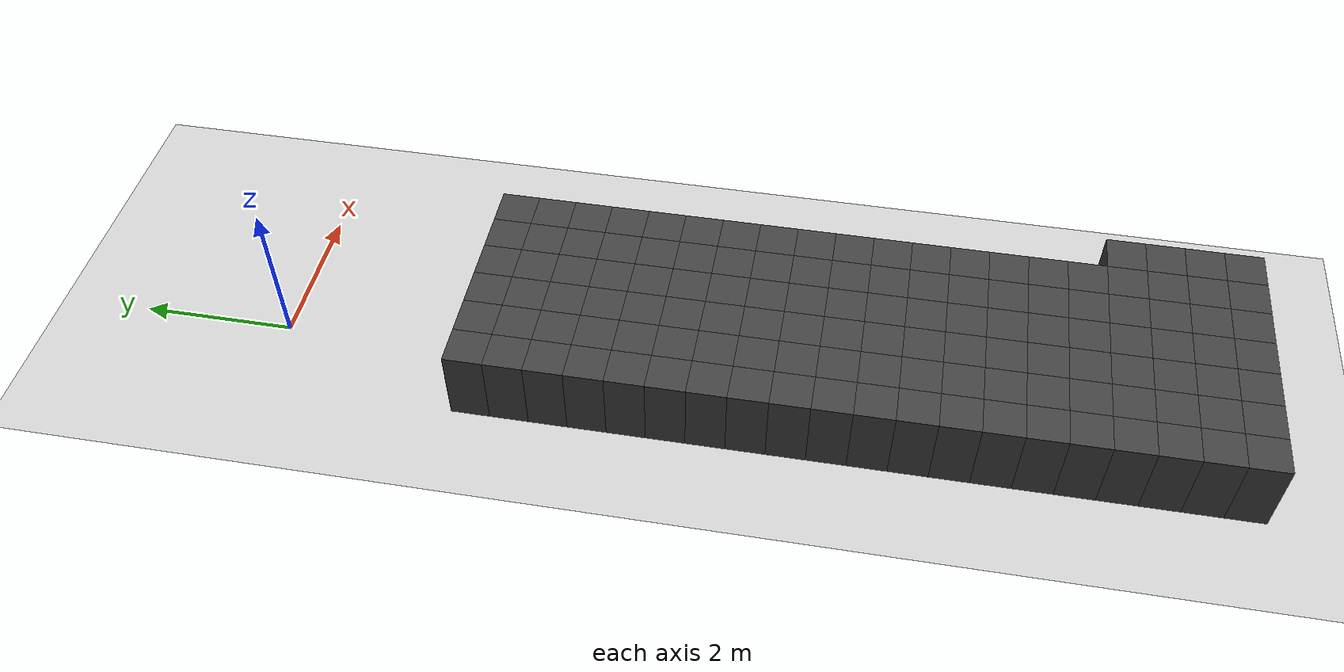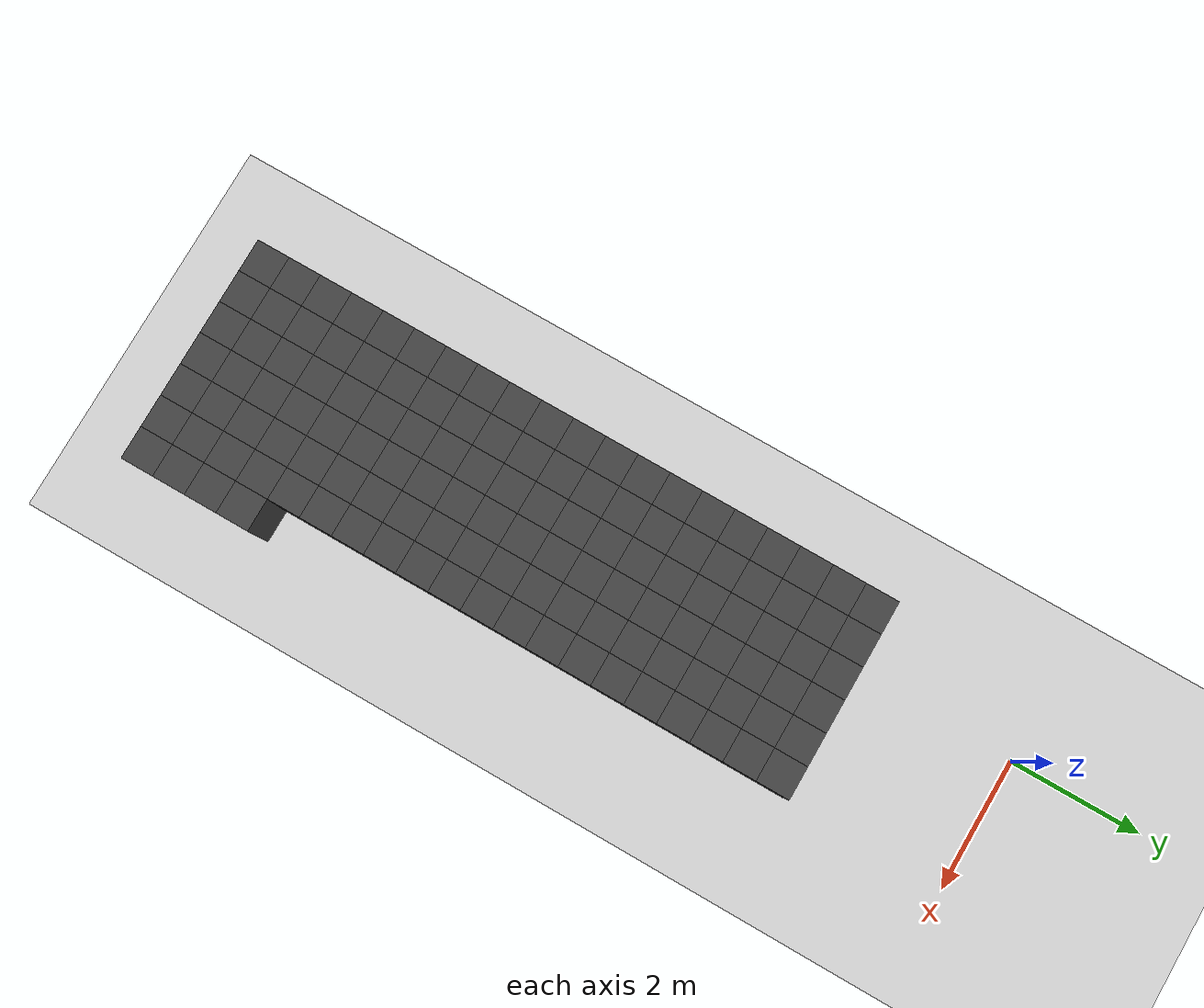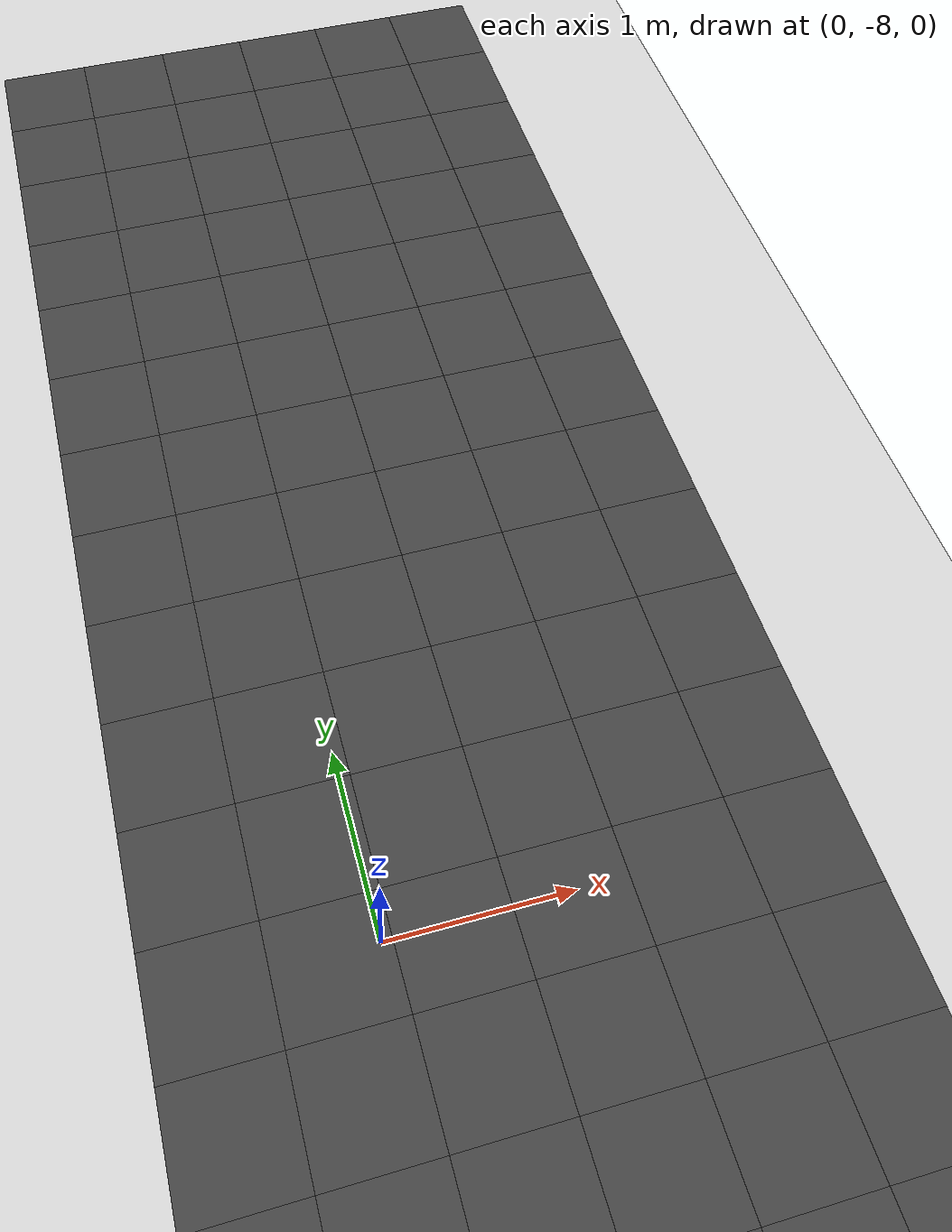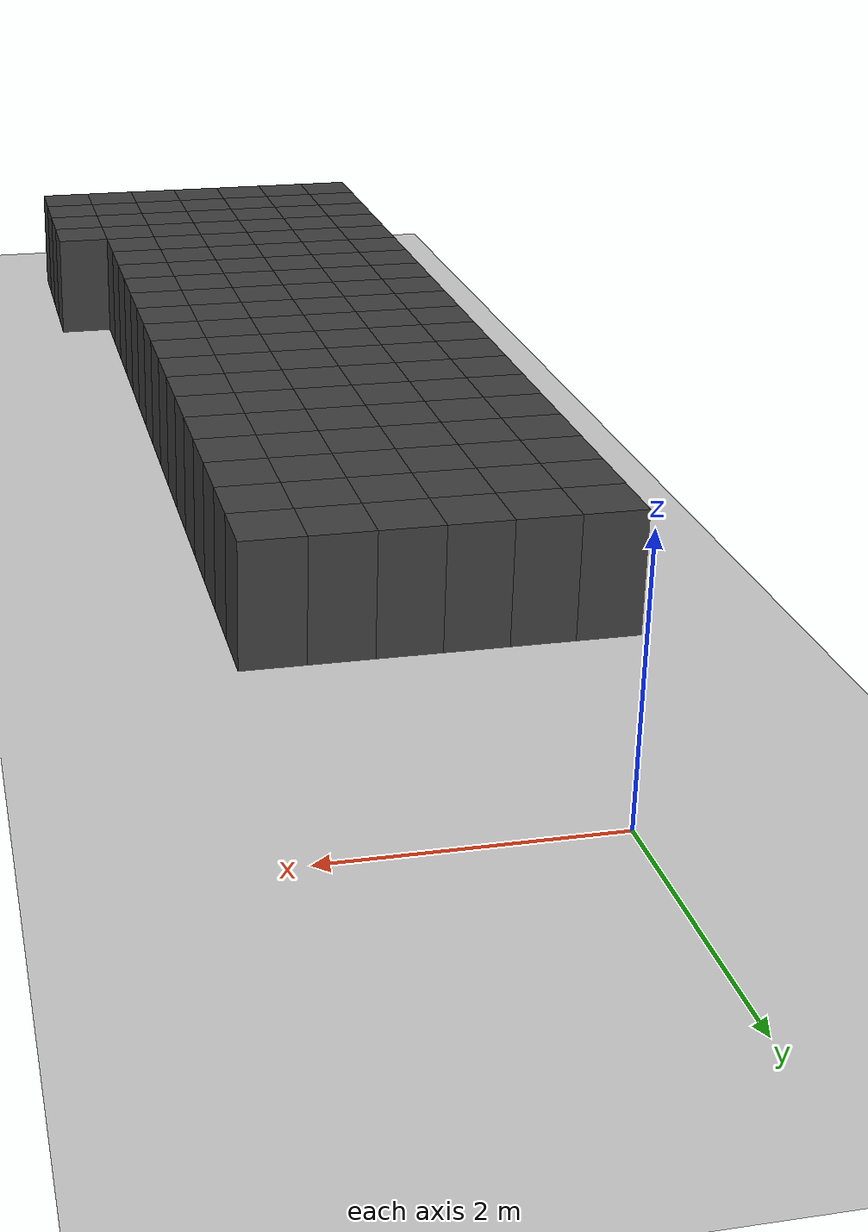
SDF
<sdf version="1.7">
 <world name="map_13994">
  <model name="ground_plane">
   <static>true</static>
   <link name="link">
    <collision name="collision">
     <geometry><plane><normal>0 0 1</normal><size>200 200</size></plane></geometry>
    </collision>
    <visual name="visual">
     <geometry><plane><normal>0 0 1</normal><size>200 200</size></plane></geometry>
     <material><ambient>0.8 0.8 0.8 1</ambient><diffuse>0.8 0.8 0.8 1</diffuse></material>
    </visual>
   </link>
  </model>
  <model name="maze_environment">
   <static>true</static>
   <link name="wall_997">
    <pose>-0.750 -2.750 0.500 0 0 0</pose>
    <collision name="col"><geometry><box><size>0.5 0.5 1.0</size></box></geometry></collision>
    <visual name="vis">
     <geometry><box><size>0.5 0.5 1.0</size></box></geometry>
     <material><ambient>0.15 0.15 0.15 1</ambient><diffuse>0.25 0.25 0.25 1</diffuse></material>
    </visual>
   </link>
   <link name="wall_998">
    <pose>-0.250 -2.750 0.500 0 0 0</pose>
    <collision name="col"><geometry><box><size>0.5 0.5 1.0</size></box></geometry></collision>
    <visual name="vis">
     <geometry><box><size>0.5 0.5 1.0</size></box></geometry>
     <material><ambient>0.15 0.15 0.15 1</ambient><diffuse>0.25 0.25 0.25 1</diffuse></material>
    </visual>
   </link>
   <link name="wall_999">
    <pose>0.250 -2.750 0.500 0 0 0</pose>
    <collision name="col"><geometry><box><size>0.5 0.5 1.0</size></box></geometry></collision>
    <visual name="vis">
     <geometry><box><size>0.5 0.5 1.0</size></box></geometry>
     <material><ambient>0.15 0.15 0.15 1</ambient><diffuse>0.25 0.25 0.25 1</diffuse></material>
    </visual>
   </link>
   <link name="wall_1000">
    <pose>0.750 -2.750 0.500 0 0 0</pose>
    <collision name="col"><geometry><box><size>0.5 0.5 1.0</size></box></geometry></collision>
    <visual name="vis">
     <geometry><box><size>0.5 0.5 1.0</size></box></geometry>
     <material><ambient>0.15 0.15 0.15 1</ambient><diffuse>0.25 0.25 0.25 1</diffuse></material>
    </visual>
   </link>
   <link name="wall_1001">
    <pose>1.250 -2.750 0.500 0 0 0</pose>
    <collision name="col"><geometry><box><size>0.5 0.5 1.0</size></box></geometry></collision>
    <visual name="vis">
     <geometry><box><size>0.5 0.5 1.0</size></box></geometry>
     <material><ambient>0.15 0.15 0.15 1</ambient><diffuse>0.25 0.25 0.25 1</diffuse></material>
    </visual>
   </link>
   <link name="wall_1002">
    <pose>1.750 -2.750 0.500 0 0 0</pose>
    <collision name="col"><geometry><box><size>0.5 0.5 1.0</size></box></geometry></collision>
    <visual name="vis">
     <geometry><box><size>0.5 0.5 1.0</size></box></geometry>
     <material><ambient>0.15 0.15 0.15 1</ambient><diffuse>0.25 0.25 0.25 1</diffuse></material>
    </visual>
   </link>
   <link name="wall_1038">
    <pose>-0.750 -3.250 0.500 0 0 0</pose>
    <collision name="col"><geometry><box><size>0.5 0.5 1.0</size></box></geometry></collision>
    <visual name="vis">
     <geometry><box><size>0.5 0.5 1.0</size></box></geometry>
     <material><ambient>0.15 0.15 0.15 1</ambient><diffuse>0.25 0.25 0.25 1</diffuse></material>
    </visual>
   </link>
   <link name="wall_1039">
    <pose>-0.250 -3.250 0.500 0 0 0</pose>
    <collision name="col"><geometry><box><size>0.5 0.5 1.0</size></box></geometry></collision>
    <visual name="vis">
     <geometry><box><size>0.5 0.5 1.0</size></box></geometry>
     <material><ambient>0.15 0.15 0.15 1</ambient><diffuse>0.25 0.25 0.25 1</diffuse></material>
    </visual>
   </link>
   <link name="wall_1040">
    <pose>0.250 -3.250 0.500 0 0 0</pose>
    <collision name="col"><geometry><box><size>0.5 0.5 1.0</size></box></geometry></collision>
    <visual name="vis">
     <geometry><box><size>0.5 0.5 1.0</size></box></geometry>
     <material><ambient>0.15 0.15 0.15 1</ambient><diffuse>0.25 0.25 0.25 1</diffuse></material>
    </visual>
   </link>
   <link name="wall_1041">
    <pose>0.750 -3.250 0.500 0 0 0</pose>
    <collision name="col"><geometry><box><size>0.5 0.5 1.0</size></box></geometry></collision>
    <visual name="vis">
     <geometry><box><size>0.5 0.5 1.0</size></box></geometry>
     <material><ambient>0.15 0.15 0.15 1</ambient><diffuse>0.25 0.25 0.25 1</diffuse></material>
    </visual>
   </link>
   <link name="wall_1042">
    <pose>1.250 -3.250 0.500 0 0 0</pose>
    <collision name="col"><geometry><box><size>0.5 0.5 1.0</size></box></geometry></collision>
    <visual name="vis">
     <geometry><box><size>0.5 0.5 1.0</size></box></geometry>
     <material><ambient>0.15 0.15 0.15 1</ambient><diffuse>0.25 0.25 0.25 1</diffuse></material>
    </visual>
   </link>
   <link name="wall_1043">
    <pose>1.750 -3.250 0.500 0 0 0</pose>
    <collision name="col"><geometry><box><size>0.5 0.5 1.0</size></box></geometry></collision>
    <visual name="vis">
     <geometry><box><size>0.5 0.5 1.0</size></box></geometry>
     <material><ambient>0.15 0.15 0.15 1</ambient><diffuse>0.25 0.25 0.25 1</diffuse></material>
    </visual>
   </link>
   <link name="wall_1079">
    <pose>-0.750 -3.750 0.500 0 0 0</pose>
    <collision name="col"><geometry><box><size>0.5 0.5 1.0</size></box></geometry></collision>
    <visual name="vis">
     <geometry><box><size>0.5 0.5 1.0</size></box></geometry>
     <material><ambient>0.15 0.15 0.15 1</ambient><diffuse>0.25 0.25 0.25 1</diffuse></material>
    </visual>
   </link>
   <link name="wall_1080">
    <pose>-0.250 -3.750 0.500 0 0 0</pose>
    <collision name="col"><geometry><box><size>0.5 0.5 1.0</size></box></geometry></collision>
    <visual name="vis">
     <geometry><box><size>0.5 0.5 1.0</size></box></geometry>
     <material><ambient>0.15 0.15 0.15 1</ambient><diffuse>0.25 0.25 0.25 1</diffuse></material>
    </visual>
   </link>
   <link name="wall_1081">
    <pose>0.250 -3.750 0.500 0 0 0</pose>
    <collision name="col"><geometry><box><size>0.5 0.5 1.0</size></box></geometry></collision>
    <visual name="vis">
     <geometry><box><size>0.5 0.5 1.0</size></box></geometry>
     <material><ambient>0.15 0.15 0.15 1</ambient><diffuse>0.25 0.25 0.25 1</diffuse></material>
    </visual>
   </link>
   <link name="wall_1082">
    <pose>0.750 -3.750 0.500 0 0 0</pose>
    <collision name="col"><geometry><box><size>0.5 0.5 1.0</size></box></geometry></collision>
    <visual name="vis">
     <geometry><box><size>0.5 0.5 1.0</size></box></geometry>
     <material><ambient>0.15 0.15 0.15 1</ambient><diffuse>0.25 0.25 0.25 1</diffuse></material>
    </visual>
   </link>
   <link name="wall_1083">
    <pose>1.250 -3.750 0.500 0 0 0</pose>
    <collision name="col"><geometry><box><size>0.5 0.5 1.0</size></box></geometry></collision>
    <visual name="vis">
     <geometry><box><size>0.5 0.5 1.0</size></box></geometry>
     <material><ambient>0.15 0.15 0.15 1</ambient><diffuse>0.25 0.25 0.25 1</diffuse></material>
    </visual>
   </link>
   <link name="wall_1084">
    <pose>1.750 -3.750 0.500 0 0 0</pose>
    <collision name="col"><geometry><box><size>0.5 0.5 1.0</size></box></geometry></collision>
    <visual name="vis">
     <geometry><box><size>0.5 0.5 1.0</size></box></geometry>
     <material><ambient>0.15 0.15 0.15 1</ambient><diffuse>0.25 0.25 0.25 1</diffuse></material>
    </visual>
   </link>
   <link name="wall_1114">
    <pose>-0.750 -4.250 0.500 0 0 0</pose>
    <collision name="col"><geometry><box><size>0.5 0.5 1.0</size></box></geometry></collision>
    <visual name="vis">
     <geometry><box><size>0.5 0.5 1.0</size></box></geometry>
     <material><ambient>0.15 0.15 0.15 1</ambient><diffuse>0.25 0.25 0.25 1</diffuse></material>
    </visual>
   </link>
   <link name="wall_1115">
    <pose>-0.250 -4.250 0.500 0 0 0</pose>
    <collision name="col"><geometry><box><size>0.5 0.5 1.0</size></box></geometry></collision>
    <visual name="vis">
     <geometry><box><size>0.5 0.5 1.0</size></box></geometry>
     <material><ambient>0.15 0.15 0.15 1</ambient><diffuse>0.25 0.25 0.25 1</diffuse></material>
    </visual>
   </link>
   <link name="wall_1116">
    <pose>0.250 -4.250 0.500 0 0 0</pose>
    <collision name="col"><geometry><box><size>0.5 0.5 1.0</size></box></geometry></collision>
    <visual name="vis">
     <geometry><box><size>0.5 0.5 1.0</size></box></geometry>
     <material><ambient>0.15 0.15 0.15 1</ambient><diffuse>0.25 0.25 0.25 1</diffuse></material>
    </visual>
   </link>
   <link name="wall_1117">
    <pose>0.750 -4.250 0.500 0 0 0</pose>
    <collision name="col"><geometry><box><size>0.5 0.5 1.0</size></box></geometry></collision>
    <visual name="vis">
     <geometry><box><size>0.5 0.5 1.0</size></box></geometry>
     <material><ambient>0.15 0.15 0.15 1</ambient><diffuse>0.25 0.25 0.25 1</diffuse></material>
    </visual>
   </link>
   <link name="wall_1118">
    <pose>1.250 -4.250 0.500 0 0 0</pose>
    <collision name="col"><geometry><box><size>0.5 0.5 1.0</size></box></geometry></collision>
    <visual name="vis">
     <geometry><box><size>0.5 0.5 1.0</size></box></geometry>
     <material><ambient>0.15 0.15 0.15 1</ambient><diffuse>0.25 0.25 0.25 1</diffuse></material>
    </visual>
   </link>
   <link name="wall_1119">
    <pose>1.750 -4.250 0.500 0 0 0</pose>
    <collision name="col"><geometry><box><size>0.5 0.5 1.0</size></box></geometry></collision>
    <visual name="vis">
     <geometry><box><size>0.5 0.5 1.0</size></box></geometry>
     <material><ambient>0.15 0.15 0.15 1</ambient><diffuse>0.25 0.25 0.25 1</diffuse></material>
    </visual>
   </link>
   <link name="wall_1144">
    <pose>-0.750 -4.750 0.500 0 0 0</pose>
    <collision name="col"><geometry><box><size>0.5 0.5 1.0</size></box></geometry></collision>
    <visual name="vis">
     <geometry><box><size>0.5 0.5 1.0</size></box></geometry>
     <material><ambient>0.15 0.15 0.15 1</ambient><diffuse>0.25 0.25 0.25 1</diffuse></material>
    </visual>
   </link>
   <link name="wall_1145">
    <pose>-0.250 -4.750 0.500 0 0 0</pose>
    <collision name="col"><geometry><box><size>0.5 0.5 1.0</size></box></geometry></collision>
    <visual name="vis">
     <geometry><box><size>0.5 0.5 1.0</size></box></geometry>
     <material><ambient>0.15 0.15 0.15 1</ambient><diffuse>0.25 0.25 0.25 1</diffuse></material>
    </visual>
   </link>
   <link name="wall_1146">
    <pose>0.250 -4.750 0.500 0 0 0</pose>
    <collision name="col"><geometry><box><size>0.5 0.5 1.0</size></box></geometry></collision>
    <visual name="vis">
     <geometry><box><size>0.5 0.5 1.0</size></box></geometry>
     <material><ambient>0.15 0.15 0.15 1</ambient><diffuse>0.25 0.25 0.25 1</diffuse></material>
    </visual>
   </link>
   <link name="wall_1147">
    <pose>0.750 -4.750 0.500 0 0 0</pose>
    <collision name="col"><geometry><box><size>0.5 0.5 1.0</size></box></geometry></collision>
    <visual name="vis">
     <geometry><box><size>0.5 0.5 1.0</size></box></geometry>
     <material><ambient>0.15 0.15 0.15 1</ambient><diffuse>0.25 0.25 0.25 1</diffuse></material>
    </visual>
   </link>
   <link name="wall_1148">
    <pose>1.250 -4.750 0.500 0 0 0</pose>
    <collision name="col"><geometry><box><size>0.5 0.5 1.0</size></box></geometry></collision>
    <visual name="vis">
     <geometry><box><size>0.5 0.5 1.0</size></box></geometry>
     <material><ambient>0.15 0.15 0.15 1</ambient><diffuse>0.25 0.25 0.25 1</diffuse></material>
    </visual>
   </link>
   <link name="wall_1149">
    <pose>1.750 -4.750 0.500 0 0 0</pose>
    <collision name="col"><geometry><box><size>0.5 0.5 1.0</size></box></geometry></collision>
    <visual name="vis">
     <geometry><box><size>0.5 0.5 1.0</size></box></geometry>
     <material><ambient>0.15 0.15 0.15 1</ambient><diffuse>0.25 0.25 0.25 1</diffuse></material>
    </visual>
   </link>
   <link name="wall_1174">
    <pose>-0.750 -5.250 0.500 0 0 0</pose>
    <collision name="col"><geometry><box><size>0.5 0.5 1.0</size></box></geometry></collision>
    <visual name="vis">
     <geometry><box><size>0.5 0.5 1.0</size></box></geometry>
     <material><ambient>0.15 0.15 0.15 1</ambient><diffuse>0.25 0.25 0.25 1</diffuse></material>
    </visual>
   </link>
   <link name="wall_1175">
    <pose>-0.250 -5.250 0.500 0 0 0</pose>
    <collision name="col"><geometry><box><size>0.5 0.5 1.0</size></box></geometry></collision>
    <visual name="vis">
     <geometry><box><size>0.5 0.5 1.0</size></box></geometry>
     <material><ambient>0.15 0.15 0.15 1</ambient><diffuse>0.25 0.25 0.25 1</diffuse></material>
    </visual>
   </link>
   <link name="wall_1176">
    <pose>0.250 -5.250 0.500 0 0 0</pose>
    <collision name="col"><geometry><box><size>0.5 0.5 1.0</size></box></geometry></collision>
    <visual name="vis">
     <geometry><box><size>0.5 0.5 1.0</size></box></geometry>
     <material><ambient>0.15 0.15 0.15 1</ambient><diffuse>0.25 0.25 0.25 1</diffuse></material>
    </visual>
   </link>
   <link name="wall_1177">
    <pose>0.750 -5.250 0.500 0 0 0</pose>
    <collision name="col"><geometry><box><size>0.5 0.5 1.0</size></box></geometry></collision>
    <visual name="vis">
     <geometry><box><size>0.5 0.5 1.0</size></box></geometry>
     <material><ambient>0.15 0.15 0.15 1</ambient><diffuse>0.25 0.25 0.25 1</diffuse></material>
    </visual>
   </link>
   <link name="wall_1178">
    <pose>1.250 -5.250 0.500 0 0 0</pose>
    <collision name="col"><geometry><box><size>0.5 0.5 1.0</size></box></geometry></collision>
    <visual name="vis">
     <geometry><box><size>0.5 0.5 1.0</size></box></geometry>
     <material><ambient>0.15 0.15 0.15 1</ambient><diffuse>0.25 0.25 0.25 1</diffuse></material>
    </visual>
   </link>
   <link name="wall_1179">
    <pose>1.750 -5.250 0.500 0 0 0</pose>
    <collision name="col"><geometry><box><size>0.5 0.5 1.0</size></box></geometry></collision>
    <visual name="vis">
     <geometry><box><size>0.5 0.5 1.0</size></box></geometry>
     <material><ambient>0.15 0.15 0.15 1</ambient><diffuse>0.25 0.25 0.25 1</diffuse></material>
    </visual>
   </link>
   <link name="wall_1209">
    <pose>-0.750 -5.750 0.500 0 0 0</pose>
    <collision name="col"><geometry><box><size>0.5 0.5 1.0</size></box></geometry></collision>
    <visual name="vis">
     <geometry><box><size>0.5 0.5 1.0</size></box></geometry>
     <material><ambient>0.15 0.15 0.15 1</ambient><diffuse>0.25 0.25 0.25 1</diffuse></material>
    </visual>
   </link>
   <link name="wall_1210">
    <pose>-0.250 -5.750 0.500 0 0 0</pose>
    <collision name="col"><geometry><box><size>0.5 0.5 1.0</size></box></geometry></collision>
    <visual name="vis">
     <geometry><box><size>0.5 0.5 1.0</size></box></geometry>
     <material><ambient>0.15 0.15 0.15 1</ambient><diffuse>0.25 0.25 0.25 1</diffuse></material>
    </visual>
   </link>
   <link name="wall_1211">
    <pose>0.250 -5.750 0.500 0 0 0</pose>
    <collision name="col"><geometry><box><size>0.5 0.5 1.0</size></box></geometry></collision>
    <visual name="vis">
     <geometry><box><size>0.5 0.5 1.0</size></box></geometry>
     <material><ambient>0.15 0.15 0.15 1</ambient><diffuse>0.25 0.25 0.25 1</diffuse></material>
    </visual>
   </link>
   <link name="wall_1212">
    <pose>0.750 -5.750 0.500 0 0 0</pose>
    <collision name="col"><geometry><box><size>0.5 0.5 1.0</size></box></geometry></collision>
    <visual name="vis">
     <geometry><box><size>0.5 0.5 1.0</size></box></geometry>
     <material><ambient>0.15 0.15 0.15 1</ambient><diffuse>0.25 0.25 0.25 1</diffuse></material>
    </visual>
   </link>
   <link name="wall_1213">
    <pose>1.250 -5.750 0.500 0 0 0</pose>
    <collision name="col"><geometry><box><size>0.5 0.5 1.0</size></box></geometry></collision>
    <visual name="vis">
     <geometry><box><size>0.5 0.5 1.0</size></box></geometry>
     <material><ambient>0.15 0.15 0.15 1</ambient><diffuse>0.25 0.25 0.25 1</diffuse></material>
    </visual>
   </link>
   <link name="wall_1214">
    <pose>1.750 -5.750 0.500 0 0 0</pose>
    <collision name="col"><geometry><box><size>0.5 0.5 1.0</size></box></geometry></collision>
    <visual name="vis">
     <geometry><box><size>0.5 0.5 1.0</size></box></geometry>
     <material><ambient>0.15 0.15 0.15 1</ambient><diffuse>0.25 0.25 0.25 1</diffuse></material>
    </visual>
   </link>
   <link name="wall_1239">
    <pose>-0.750 -6.250 0.500 0 0 0</pose>
    <collision name="col"><geometry><box><size>0.5 0.5 1.0</size></box></geometry></collision>
    <visual name="vis">
     <geometry><box><size>0.5 0.5 1.0</size></box></geometry>
     <material><ambient>0.15 0.15 0.15 1</ambient><diffuse>0.25 0.25 0.25 1</diffuse></material>
    </visual>
   </link>
   <link name="wall_1240">
    <pose>-0.250 -6.250 0.500 0 0 0</pose>
    <collision name="col"><geometry><box><size>0.5 0.5 1.0</size></box></geometry></collision>
    <visual name="vis">
     <geometry><box><size>0.5 0.5 1.0</size></box></geometry>
     <material><ambient>0.15 0.15 0.15 1</ambient><diffuse>0.25 0.25 0.25 1</diffuse></material>
    </visual>
   </link>
   <link name="wall_1241">
    <pose>0.250 -6.250 0.500 0 0 0</pose>
    <collision name="col"><geometry><box><size>0.5 0.5 1.0</size></box></geometry></collision>
    <visual name="vis">
     <geometry><box><size>0.5 0.5 1.0</size></box></geometry>
     <material><ambient>0.15 0.15 0.15 1</ambient><diffuse>0.25 0.25 0.25 1</diffuse></material>
    </visual>
   </link>
   <link name="wall_1242">
    <pose>0.750 -6.250 0.500 0 0 0</pose>
    <collision name="col"><geometry><box><size>0.5 0.5 1.0</size></box></geometry></collision>
    <visual name="vis">
     <geometry><box><size>0.5 0.5 1.0</size></box></geometry>
     <material><ambient>0.15 0.15 0.15 1</ambient><diffuse>0.25 0.25 0.25 1</diffuse></material>
    </visual>
   </link>
   <link name="wall_1243">
    <pose>1.250 -6.250 0.500 0 0 0</pose>
    <collision name="col"><geometry><box><size>0.5 0.5 1.0</size></box></geometry></collision>
    <visual name="vis">
     <geometry><box><size>0.5 0.5 1.0</size></box></geometry>
     <material><ambient>0.15 0.15 0.15 1</ambient><diffuse>0.25 0.25 0.25 1</diffuse></material>
    </visual>
   </link>
   <link name="wall_1244">
    <pose>1.750 -6.250 0.500 0 0 0</pose>
    <collision name="col"><geometry><box><size>0.5 0.5 1.0</size></box></geometry></collision>
    <visual name="vis">
     <geometry><box><size>0.5 0.5 1.0</size></box></geometry>
     <material><ambient>0.15 0.15 0.15 1</ambient><diffuse>0.25 0.25 0.25 1</diffuse></material>
    </visual>
   </link>
   <link name="wall_1276">
    <pose>-0.750 -6.750 0.500 0 0 0</pose>
    <collision name="col"><geometry><box><size>0.5 0.5 1.0</size></box></geometry></collision>
    <visual name="vis">
     <geometry><box><size>0.5 0.5 1.0</size></box></geometry>
     <material><ambient>0.15 0.15 0.15 1</ambient><diffuse>0.25 0.25 0.25 1</diffuse></material>
    </visual>
   </link>
   <link name="wall_1277">
    <pose>-0.250 -6.750 0.500 0 0 0</pose>
    <collision name="col"><geometry><box><size>0.5 0.5 1.0</size></box></geometry></collision>
    <visual name="vis">
     <geometry><box><size>0.5 0.5 1.0</size></box></geometry>
     <material><ambient>0.15 0.15 0.15 1</ambient><diffuse>0.25 0.25 0.25 1</diffuse></material>
    </visual>
   </link>
   <link name="wall_1278">
    <pose>0.250 -6.750 0.500 0 0 0</pose>
    <collision name="col"><geometry><box><size>0.5 0.5 1.0</size></box></geometry></collision>
    <visual name="vis">
     <geometry><box><size>0.5 0.5 1.0</size></box></geometry>
     <material><ambient>0.15 0.15 0.15 1</ambient><diffuse>0.25 0.25 0.25 1</diffuse></material>
    </visual>
   </link>
   <link name="wall_1279">
    <pose>0.750 -6.750 0.500 0 0 0</pose>
    <collision name="col"><geometry><box><size>0.5 0.5 1.0</size></box></geometry></collision>
    <visual name="vis">
     <geometry><box><size>0.5 0.5 1.0</size></box></geometry>
     <material><ambient>0.15 0.15 0.15 1</ambient><diffuse>0.25 0.25 0.25 1</diffuse></material>
    </visual>
   </link>
   <link name="wall_1280">
    <pose>1.250 -6.750 0.500 0 0 0</pose>
    <collision name="col"><geometry><box><size>0.5 0.5 1.0</size></box></geometry></collision>
    <visual name="vis">
     <geometry><box><size>0.5 0.5 1.0</size></box></geometry>
     <material><ambient>0.15 0.15 0.15 1</ambient><diffuse>0.25 0.25 0.25 1</diffuse></material>
    </visual>
   </link>
   <link name="wall_1281">
    <pose>1.750 -6.750 0.500 0 0 0</pose>
    <collision name="col"><geometry><box><size>0.5 0.5 1.0</size></box></geometry></collision>
    <visual name="vis">
     <geometry><box><size>0.5 0.5 1.0</size></box></geometry>
     <material><ambient>0.15 0.15 0.15 1</ambient><diffuse>0.25 0.25 0.25 1</diffuse></material>
    </visual>
   </link>
   <link name="wall_1313">
    <pose>-0.750 -7.250 0.500 0 0 0</pose>
    <collision name="col"><geometry><box><size>0.5 0.5 1.0</size></box></geometry></collision>
    <visual name="vis">
     <geometry><box><size>0.5 0.5 1.0</size></box></geometry>
     <material><ambient>0.15 0.15 0.15 1</ambient><diffuse>0.25 0.25 0.25 1</diffuse></material>
    </visual>
   </link>
   <link name="wall_1314">
    <pose>-0.250 -7.250 0.500 0 0 0</pose>
    <collision name="col"><geometry><box><size>0.5 0.5 1.0</size></box></geometry></collision>
    <visual name="vis">
     <geometry><box><size>0.5 0.5 1.0</size></box></geometry>
     <material><ambient>0.15 0.15 0.15 1</ambient><diffuse>0.25 0.25 0.25 1</diffuse></material>
    </visual>
   </link>
   <link name="wall_1315">
    <pose>0.250 -7.250 0.500 0 0 0</pose>
    <collision name="col"><geometry><box><size>0.5 0.5 1.0</size></box></geometry></collision>
    <visual name="vis">
     <geometry><box><size>0.5 0.5 1.0</size></box></geometry>
     <material><ambient>0.15 0.15 0.15 1</ambient><diffuse>0.25 0.25 0.25 1</diffuse></material>
    </visual>
   </link>
   <link name="wall_1316">
    <pose>0.750 -7.250 0.500 0 0 0</pose>
    <collision name="col"><geometry><box><size>0.5 0.5 1.0</size></box></geometry></collision>
    <visual name="vis">
     <geometry><box><size>0.5 0.5 1.0</size></box></geometry>
     <material><ambient>0.15 0.15 0.15 1</ambient><diffuse>0.25 0.25 0.25 1</diffuse></material>
    </visual>
   </link>
   <link name="wall_1317">
    <pose>1.250 -7.250 0.500 0 0 0</pose>
    <collision name="col"><geometry><box><size>0.5 0.5 1.0</size></box></geometry></collision>
    <visual name="vis">
     <geometry><box><size>0.5 0.5 1.0</size></box></geometry>
     <material><ambient>0.15 0.15 0.15 1</ambient><diffuse>0.25 0.25 0.25 1</diffuse></material>
    </visual>
   </link>
   <link name="wall_1318">
    <pose>1.750 -7.250 0.500 0 0 0</pose>
    <collision name="col"><geometry><box><size>0.5 0.5 1.0</size></box></geometry></collision>
    <visual name="vis">
     <geometry><box><size>0.5 0.5 1.0</size></box></geometry>
     <material><ambient>0.15 0.15 0.15 1</ambient><diffuse>0.25 0.25 0.25 1</diffuse></material>
    </visual>
   </link>
   <link name="wall_1350">
    <pose>-0.750 -7.750 0.500 0 0 0</pose>
    <collision name="col"><geometry><box><size>0.5 0.5 1.0</size></box></geometry></collision>
    <visual name="vis">
     <geometry><box><size>0.5 0.5 1.0</size></box></geometry>
     <material><ambient>0.15 0.15 0.15 1</ambient><diffuse>0.25 0.25 0.25 1</diffuse></material>
    </visual>
   </link>
   <link name="wall_1351">
    <pose>-0.250 -7.750 0.500 0 0 0</pose>
    <collision name="col"><geometry><box><size>0.5 0.5 1.0</size></box></geometry></collision>
    <visual name="vis">
     <geometry><box><size>0.5 0.5 1.0</size></box></geometry>
     <material><ambient>0.15 0.15 0.15 1</ambient><diffuse>0.25 0.25 0.25 1</diffuse></material>
    </visual>
   </link>
   <link name="wall_1352">
    <pose>0.250 -7.750 0.500 0 0 0</pose>
    <collision name="col"><geometry><box><size>0.5 0.5 1.0</size></box></geometry></collision>
    <visual name="vis">
     <geometry><box><size>0.5 0.5 1.0</size></box></geometry>
     <material><ambient>0.15 0.15 0.15 1</ambient><diffuse>0.25 0.25 0.25 1</diffuse></material>
    </visual>
   </link>
   <link name="wall_1353">
    <pose>0.750 -7.750 0.500 0 0 0</pose>
    <collision name="col"><geometry><box><size>0.5 0.5 1.0</size></box></geometry></collision>
    <visual name="vis">
     <geometry><box><size>0.5 0.5 1.0</size></box></geometry>
     <material><ambient>0.15 0.15 0.15 1</ambient><diffuse>0.25 0.25 0.25 1</diffuse></material>
    </visual>
   </link>
   <link name="wall_1354">
    <pose>1.250 -7.750 0.500 0 0 0</pose>
    <collision name="col"><geometry><box><size>0.5 0.5 1.0</size></box></geometry></collision>
    <visual name="vis">
     <geometry><box><size>0.5 0.5 1.0</size></box></geometry>
     <material><ambient>0.15 0.15 0.15 1</ambient><diffuse>0.25 0.25 0.25 1</diffuse></material>
    </visual>
   </link>
   <link name="wall_1355">
    <pose>1.750 -7.750 0.500 0 0 0</pose>
    <collision name="col"><geometry><box><size>0.5 0.5 1.0</size></box></geometry></collision>
    <visual name="vis">
     <geometry><box><size>0.5 0.5 1.0</size></box></geometry>
     <material><ambient>0.15 0.15 0.15 1</ambient><diffuse>0.25 0.25 0.25 1</diffuse></material>
    </visual>
   </link>
   <link name="wall_1393">
    <pose>-0.750 -8.250 0.500 0 0 0</pose>
    <collision name="col"><geometry><box><size>0.5 0.5 1.0</size></box></geometry></collision>
    <visual name="vis">
     <geometry><box><size>0.5 0.5 1.0</size></box></geometry>
     <material><ambient>0.15 0.15 0.15 1</ambient><diffuse>0.25 0.25 0.25 1</diffuse></material>
    </visual>
   </link>
   <link name="wall_1394">
    <pose>-0.250 -8.250 0.500 0 0 0</pose>
    <collision name="col"><geometry><box><size>0.5 0.5 1.0</size></box></geometry></collision>
    <visual name="vis">
     <geometry><box><size>0.5 0.5 1.0</size></box></geometry>
     <material><ambient>0.15 0.15 0.15 1</ambient><diffuse>0.25 0.25 0.25 1</diffuse></material>
    </visual>
   </link>
   <link name="wall_1395">
    <pose>0.250 -8.250 0.500 0 0 0</pose>
    <collision name="col"><geometry><box><size>0.5 0.5 1.0</size></box></geometry></collision>
    <visual name="vis">
     <geometry><box><size>0.5 0.5 1.0</size></box></geometry>
     <material><ambient>0.15 0.15 0.15 1</ambient><diffuse>0.25 0.25 0.25 1</diffuse></material>
    </visual>
   </link>
   <link name="wall_1396">
    <pose>0.750 -8.250 0.500 0 0 0</pose>
    <collision name="col"><geometry><box><size>0.5 0.5 1.0</size></box></geometry></collision>
    <visual name="vis">
     <geometry><box><size>0.5 0.5 1.0</size></box></geometry>
     <material><ambient>0.15 0.15 0.15 1</ambient><diffuse>0.25 0.25 0.25 1</diffuse></material>
    </visual>
   </link>
   <link name="wall_1397">
    <pose>1.250 -8.250 0.500 0 0 0</pose>
    <collision name="col"><geometry><box><size>0.5 0.5 1.0</size></box></geometry></collision>
    <visual name="vis">
     <geometry><box><size>0.5 0.5 1.0</size></box></geometry>
     <material><ambient>0.15 0.15 0.15 1</ambient><diffuse>0.25 0.25 0.25 1</diffuse></material>
    </visual>
   </link>
   <link name="wall_1398">
    <pose>1.750 -8.250 0.500 0 0 0</pose>
    <collision name="col"><geometry><box><size>0.5 0.5 1.0</size></box></geometry></collision>
    <visual name="vis">
     <geometry><box><size>0.5 0.5 1.0</size></box></geometry>
     <material><ambient>0.15 0.15 0.15 1</ambient><diffuse>0.25 0.25 0.25 1</diffuse></material>
    </visual>
   </link>
   <link name="wall_1436">
    <pose>-0.750 -8.750 0.500 0 0 0</pose>
    <collision name="col"><geometry><box><size>0.5 0.5 1.0</size></box></geometry></collision>
    <visual name="vis">
     <geometry><box><size>0.5 0.5 1.0</size></box></geometry>
     <material><ambient>0.15 0.15 0.15 1</ambient><diffuse>0.25 0.25 0.25 1</diffuse></material>
    </visual>
   </link>
   <link name="wall_1437">
    <pose>-0.250 -8.750 0.500 0 0 0</pose>
    <collision name="col"><geometry><box><size>0.5 0.5 1.0</size></box></geometry></collision>
    <visual name="vis">
     <geometry><box><size>0.5 0.5 1.0</size></box></geometry>
     <material><ambient>0.15 0.15 0.15 1</ambient><diffuse>0.25 0.25 0.25 1</diffuse></material>
    </visual>
   </link>
   <link name="wall_1438">
    <pose>0.250 -8.750 0.500 0 0 0</pose>
    <collision name="col"><geometry><box><size>0.5 0.5 1.0</size></box></geometry></collision>
    <visual name="vis">
     <geometry><box><size>0.5 0.5 1.0</size></box></geometry>
     <material><ambient>0.15 0.15 0.15 1</ambient><diffuse>0.25 0.25 0.25 1</diffuse></material>
    </visual>
   </link>
   <link name="wall_1439">
    <pose>0.750 -8.750 0.500 0 0 0</pose>
    <collision name="col"><geometry><box><size>0.5 0.5 1.0</size></box></geometry></collision>
    <visual name="vis">
     <geometry><box><size>0.5 0.5 1.0</size></box></geometry>
     <material><ambient>0.15 0.15 0.15 1</ambient><diffuse>0.25 0.25 0.25 1</diffuse></material>
    </visual>
   </link>
   <link name="wall_1440">
    <pose>1.250 -8.750 0.500 0 0 0</pose>
    <collision name="col"><geometry><box><size>0.5 0.5 1.0</size></box></geometry></collision>
    <visual name="vis">
     <geometry><box><size>0.5 0.5 1.0</size></box></geometry>
     <material><ambient>0.15 0.15 0.15 1</ambient><diffuse>0.25 0.25 0.25 1</diffuse></material>
    </visual>
   </link>
   <link name="wall_1441">
    <pose>1.750 -8.750 0.500 0 0 0</pose>
    <collision name="col"><geometry><box><size>0.5 0.5 1.0</size></box></geometry></collision>
    <visual name="vis">
     <geometry><box><size>0.5 0.5 1.0</size></box></geometry>
     <material><ambient>0.15 0.15 0.15 1</ambient><diffuse>0.25 0.25 0.25 1</diffuse></material>
    </visual>
   </link>
   <link name="wall_1479">
    <pose>-0.750 -9.250 0.500 0 0 0</pose>
    <collision name="col"><geometry><box><size>0.5 0.5 1.0</size></box></geometry></collision>
    <visual name="vis">
     <geometry><box><size>0.5 0.5 1.0</size></box></geometry>
     <material><ambient>0.15 0.15 0.15 1</ambient><diffuse>0.25 0.25 0.25 1</diffuse></material>
    </visual>
   </link>
   <link name="wall_1480">
    <pose>-0.250 -9.250 0.500 0 0 0</pose>
    <collision name="col"><geometry><box><size>0.5 0.5 1.0</size></box></geometry></collision>
    <visual name="vis">
     <geometry><box><size>0.5 0.5 1.0</size></box></geometry>
     <material><ambient>0.15 0.15 0.15 1</ambient><diffuse>0.25 0.25 0.25 1</diffuse></material>
    </visual>
   </link>
   <link name="wall_1481">
    <pose>0.250 -9.250 0.500 0 0 0</pose>
    <collision name="col"><geometry><box><size>0.5 0.5 1.0</size></box></geometry></collision>
    <visual name="vis">
     <geometry><box><size>0.5 0.5 1.0</size></box></geometry>
     <material><ambient>0.15 0.15 0.15 1</ambient><diffuse>0.25 0.25 0.25 1</diffuse></material>
    </visual>
   </link>
   <link name="wall_1482">
    <pose>0.750 -9.250 0.500 0 0 0</pose>
    <collision name="col"><geometry><box><size>0.5 0.5 1.0</size></box></geometry></collision>
    <visual name="vis">
     <geometry><box><size>0.5 0.5 1.0</size></box></geometry>
     <material><ambient>0.15 0.15 0.15 1</ambient><diffuse>0.25 0.25 0.25 1</diffuse></material>
    </visual>
   </link>
   <link name="wall_1483">
    <pose>1.250 -9.250 0.500 0 0 0</pose>
    <collision name="col"><geometry><box><size>0.5 0.5 1.0</size></box></geometry></collision>
    <visual name="vis">
     <geometry><box><size>0.5 0.5 1.0</size></box></geometry>
     <material><ambient>0.15 0.15 0.15 1</ambient><diffuse>0.25 0.25 0.25 1</diffuse></material>
    </visual>
   </link>
   <link name="wall_1484">
    <pose>1.750 -9.250 0.500 0 0 0</pose>
    <collision name="col"><geometry><box><size>0.5 0.5 1.0</size></box></geometry></collision>
    <visual name="vis">
     <geometry><box><size>0.5 0.5 1.0</size></box></geometry>
     <material><ambient>0.15 0.15 0.15 1</ambient><diffuse>0.25 0.25 0.25 1</diffuse></material>
    </visual>
   </link>
   <link name="wall_1515">
    <pose>-0.750 -9.750 0.500 0 0 0</pose>
    <collision name="col"><geometry><box><size>0.5 0.5 1.0</size></box></geometry></collision>
    <visual name="vis">
     <geometry><box><size>0.5 0.5 1.0</size></box></geometry>
     <material><ambient>0.15 0.15 0.15 1</ambient><diffuse>0.25 0.25 0.25 1</diffuse></material>
    </visual>
   </link>
   <link name="wall_1516">
    <pose>-0.250 -9.750 0.500 0 0 0</pose>
    <collision name="col"><geometry><box><size>0.5 0.5 1.0</size></box></geometry></collision>
    <visual name="vis">
     <geometry><box><size>0.5 0.5 1.0</size></box></geometry>
     <material><ambient>0.15 0.15 0.15 1</ambient><diffuse>0.25 0.25 0.25 1</diffuse></material>
    </visual>
   </link>
   <link name="wall_1517">
    <pose>0.250 -9.750 0.500 0 0 0</pose>
    <collision name="col"><geometry><box><size>0.5 0.5 1.0</size></box></geometry></collision>
    <visual name="vis">
     <geometry><box><size>0.5 0.5 1.0</size></box></geometry>
     <material><ambient>0.15 0.15 0.15 1</ambient><diffuse>0.25 0.25 0.25 1</diffuse></material>
    </visual>
   </link>
   <link name="wall_1518">
    <pose>0.750 -9.750 0.500 0 0 0</pose>
    <collision name="col"><geometry><box><size>0.5 0.5 1.0</size></box></geometry></collision>
    <visual name="vis">
     <geometry><box><size>0.5 0.5 1.0</size></box></geometry>
     <material><ambient>0.15 0.15 0.15 1</ambient><diffuse>0.25 0.25 0.25 1</diffuse></material>
    </visual>
   </link>
   <link name="wall_1519">
    <pose>1.250 -9.750 0.500 0 0 0</pose>
    <collision name="col"><geometry><box><size>0.5 0.5 1.0</size></box></geometry></collision>
    <visual name="vis">
     <geometry><box><size>0.5 0.5 1.0</size></box></geometry>
     <material><ambient>0.15 0.15 0.15 1</ambient><diffuse>0.25 0.25 0.25 1</diffuse></material>
    </visual>
   </link>
   <link name="wall_1520">
    <pose>1.750 -9.750 0.500 0 0 0</pose>
    <collision name="col"><geometry><box><size>0.5 0.5 1.0</size></box></geometry></collision>
    <visual name="vis">
     <geometry><box><size>0.5 0.5 1.0</size></box></geometry>
     <material><ambient>0.15 0.15 0.15 1</ambient><diffuse>0.25 0.25 0.25 1</diffuse></material>
    </visual>
   </link>
   <link name="wall_1551">
    <pose>-0.750 -10.250 0.500 0 0 0</pose>
    <collision name="col"><geometry><box><size>0.5 0.5 1.0</size></box></geometry></collision>
    <visual name="vis">
     <geometry><box><size>0.5 0.5 1.0</size></box></geometry>
     <material><ambient>0.15 0.15 0.15 1</ambient><diffuse>0.25 0.25 0.25 1</diffuse></material>
    </visual>
   </link>
   <link name="wall_1552">
    <pose>-0.250 -10.250 0.500 0 0 0</pose>
    <collision name="col"><geometry><box><size>0.5 0.5 1.0</size></box></geometry></collision>
    <visual name="vis">
     <geometry><box><size>0.5 0.5 1.0</size></box></geometry>
     <material><ambient>0.15 0.15 0.15 1</ambient><diffuse>0.25 0.25 0.25 1</diffuse></material>
    </visual>
   </link>
   <link name="wall_1553">
    <pose>0.250 -10.250 0.500 0 0 0</pose>
    <collision name="col"><geometry><box><size>0.5 0.5 1.0</size></box></geometry></collision>
    <visual name="vis">
     <geometry><box><size>0.5 0.5 1.0</size></box></geometry>
     <material><ambient>0.15 0.15 0.15 1</ambient><diffuse>0.25 0.25 0.25 1</diffuse></material>
    </visual>
   </link>
   <link name="wall_1554">
    <pose>0.750 -10.250 0.500 0 0 0</pose>
    <collision name="col"><geometry><box><size>0.5 0.5 1.0</size></box></geometry></collision>
    <visual name="vis">
     <geometry><box><size>0.5 0.5 1.0</size></box></geometry>
     <material><ambient>0.15 0.15 0.15 1</ambient><diffuse>0.25 0.25 0.25 1</diffuse></material>
    </visual>
   </link>
   <link name="wall_1555">
    <pose>1.250 -10.250 0.500 0 0 0</pose>
    <collision name="col"><geometry><box><size>0.5 0.5 1.0</size></box></geometry></collision>
    <visual name="vis">
     <geometry><box><size>0.5 0.5 1.0</size></box></geometry>
     <material><ambient>0.15 0.15 0.15 1</ambient><diffuse>0.25 0.25 0.25 1</diffuse></material>
    </visual>
   </link>
   <link name="wall_1556">
    <pose>1.750 -10.250 0.500 0 0 0</pose>
    <collision name="col"><geometry><box><size>0.5 0.5 1.0</size></box></geometry></collision>
    <visual name="vis">
     <geometry><box><size>0.5 0.5 1.0</size></box></geometry>
     <material><ambient>0.15 0.15 0.15 1</ambient><diffuse>0.25 0.25 0.25 1</diffuse></material>
    </visual>
   </link>
   <link name="wall_1587">
    <pose>-0.750 -10.750 0.500 0 0 0</pose>
    <collision name="col"><geometry><box><size>0.5 0.5 1.0</size></box></geometry></collision>
    <visual name="vis">
     <geometry><box><size>0.5 0.5 1.0</size></box></geometry>
     <material><ambient>0.15 0.15 0.15 1</ambient><diffuse>0.25 0.25 0.25 1</diffuse></material>
    </visual>
   </link>
   <link name="wall_1588">
    <pose>-0.250 -10.750 0.500 0 0 0</pose>
    <collision name="col"><geometry><box><size>0.5 0.5 1.0</size></box></geometry></collision>
    <visual name="vis">
     <geometry><box><size>0.5 0.5 1.0</size></box></geometry>
     <material><ambient>0.15 0.15 0.15 1</ambient><diffuse>0.25 0.25 0.25 1</diffuse></material>
    </visual>
   </link>
   <link name="wall_1589">
    <pose>0.250 -10.750 0.500 0 0 0</pose>
    <collision name="col"><geometry><box><size>0.5 0.5 1.0</size></box></geometry></collision>
    <visual name="vis">
     <geometry><box><size>0.5 0.5 1.0</size></box></geometry>
     <material><ambient>0.15 0.15 0.15 1</ambient><diffuse>0.25 0.25 0.25 1</diffuse></material>
    </visual>
   </link>
   <link name="wall_1590">
    <pose>0.750 -10.750 0.500 0 0 0</pose>
    <collision name="col"><geometry><box><size>0.5 0.5 1.0</size></box></geometry></collision>
    <visual name="vis">
     <geometry><box><size>0.5 0.5 1.0</size></box></geometry>
     <material><ambient>0.15 0.15 0.15 1</ambient><diffuse>0.25 0.25 0.25 1</diffuse></material>
    </visual>
   </link>
   <link name="wall_1591">
    <pose>1.250 -10.750 0.500 0 0 0</pose>
    <collision name="col"><geometry><box><size>0.5 0.5 1.0</size></box></geometry></collision>
    <visual name="vis">
     <geometry><box><size>0.5 0.5 1.0</size></box></geometry>
     <material><ambient>0.15 0.15 0.15 1</ambient><diffuse>0.25 0.25 0.25 1</diffuse></material>
    </visual>
   </link>
   <link name="wall_1592">
    <pose>1.750 -10.750 0.500 0 0 0</pose>
    <collision name="col"><geometry><box><size>0.5 0.5 1.0</size></box></geometry></collision>
    <visual name="vis">
     <geometry><box><size>0.5 0.5 1.0</size></box></geometry>
     <material><ambient>0.15 0.15 0.15 1</ambient><diffuse>0.25 0.25 0.25 1</diffuse></material>
    </visual>
   </link>
   <link name="wall_1593">
    <pose>2.250 -10.750 0.500 0 0 0</pose>
    <collision name="col"><geometry><box><size>0.5 0.5 1.0</size></box></geometry></collision>
    <visual name="vis">
     <geometry><box><size>0.5 0.5 1.0</size></box></geometry>
     <material><ambient>0.15 0.15 0.15 1</ambient><diffuse>0.25 0.25 0.25 1</diffuse></material>
    </visual>
   </link>
   <link name="wall_1625">
    <pose>-0.750 -11.250 0.500 0 0 0</pose>
    <collision name="col"><geometry><box><size>0.5 0.5 1.0</size></box></geometry></collision>
    <visual name="vis">
     <geometry><box><size>0.5 0.5 1.0</size></box></geometry>
     <material><ambient>0.15 0.15 0.15 1</ambient><diffuse>0.25 0.25 0.25 1</diffuse></material>
    </visual>
   </link>
   <link name="wall_1626">
    <pose>-0.250 -11.250 0.500 0 0 0</pose>
    <collision name="col"><geometry><box><size>0.5 0.5 1.0</size></box></geometry></collision>
    <visual name="vis">
     <geometry><box><size>0.5 0.5 1.0</size></box></geometry>
     <material><ambient>0.15 0.15 0.15 1</ambient><diffuse>0.25 0.25 0.25 1</diffuse></material>
    </visual>
   </link>
   <link name="wall_1627">
    <pose>0.250 -11.250 0.500 0 0 0</pose>
    <collision name="col"><geometry><box><size>0.5 0.5 1.0</size></box></geometry></collision>
    <visual name="vis">
     <geometry><box><size>0.5 0.5 1.0</size></box></geometry>
     <material><ambient>0.15 0.15 0.15 1</ambient><diffuse>0.25 0.25 0.25 1</diffuse></material>
    </visual>
   </link>
   <link name="wall_1628">
    <pose>0.750 -11.250 0.500 0 0 0</pose>
    <collision name="col"><geometry><box><size>0.5 0.5 1.0</size></box></geometry></collision>
    <visual name="vis">
     <geometry><box><size>0.5 0.5 1.0</size></box></geometry>
     <material><ambient>0.15 0.15 0.15 1</ambient><diffuse>0.25 0.25 0.25 1</diffuse></material>
    </visual>
   </link>
   <link name="wall_1629">
    <pose>1.250 -11.250 0.500 0 0 0</pose>
    <collision name="col"><geometry><box><size>0.5 0.5 1.0</size></box></geometry></collision>
    <visual name="vis">
     <geometry><box><size>0.5 0.5 1.0</size></box></geometry>
     <material><ambient>0.15 0.15 0.15 1</ambient><diffuse>0.25 0.25 0.25 1</diffuse></material>
    </visual>
   </link>
   <link name="wall_1630">
    <pose>1.750 -11.250 0.500 0 0 0</pose>
    <collision name="col"><geometry><box><size>0.5 0.5 1.0</size></box></geometry></collision>
    <visual name="vis">
     <geometry><box><size>0.5 0.5 1.0</size></box></geometry>
     <material><ambient>0.15 0.15 0.15 1</ambient><diffuse>0.25 0.25 0.25 1</diffuse></material>
    </visual>
   </link>
   <link name="wall_1631">
    <pose>2.250 -11.250 0.500 0 0 0</pose>
    <collision name="col"><geometry><box><size>0.5 0.5 1.0</size></box></geometry></collision>
    <visual name="vis">
     <geometry><box><size>0.5 0.5 1.0</size></box></geometry>
     <material><ambient>0.15 0.15 0.15 1</ambient><diffuse>0.25 0.25 0.25 1</diffuse></material>
    </visual>
   </link>
   <link name="wall_1660">
    <pose>-0.750 -11.750 0.500 0 0 0</pose>
    <collision name="col"><geometry><box><size>0.5 0.5 1.0</size></box></geometry></collision>
    <visual name="vis">
     <geometry><box><size>0.5 0.5 1.0</size></box></geometry>
     <material><ambient>0.15 0.15 0.15 1</ambient><diffuse>0.25 0.25 0.25 1</diffuse></material>
    </visual>
   </link>
   <link name="wall_1661">
    <pose>-0.250 -11.750 0.500 0 0 0</pose>
    <collision name="col"><geometry><box><size>0.5 0.5 1.0</size></box></geometry></collision>
    <visual name="vis">
     <geometry><box><size>0.5 0.5 1.0</size></box></geometry>
     <material><ambient>0.15 0.15 0.15 1</ambient><diffuse>0.25 0.25 0.25 1</diffuse></material>
    </visual>
   </link>
   <link name="wall_1662">
    <pose>0.250 -11.750 0.500 0 0 0</pose>
    <collision name="col"><geometry><box><size>0.5 0.5 1.0</size></box></geometry></collision>
    <visual name="vis">
     <geometry><box><size>0.5 0.5 1.0</size></box></geometry>
     <material><ambient>0.15 0.15 0.15 1</ambient><diffuse>0.25 0.25 0.25 1</diffuse></material>
    </visual>
   </link>
   <link name="wall_1663">
    <pose>0.750 -11.750 0.500 0 0 0</pose>
    <collision name="col"><geometry><box><size>0.5 0.5 1.0</size></box></geometry></collision>
    <visual name="vis">
     <geometry><box><size>0.5 0.5 1.0</size></box></geometry>
     <material><ambient>0.15 0.15 0.15 1</ambient><diffuse>0.25 0.25 0.25 1</diffuse></material>
    </visual>
   </link>
   <link name="wall_1664">
    <pose>1.250 -11.750 0.500 0 0 0</pose>
    <collision name="col"><geometry><box><size>0.5 0.5 1.0</size></box></geometry></collision>
    <visual name="vis">
     <geometry><box><size>0.5 0.5 1.0</size></box></geometry>
     <material><ambient>0.15 0.15 0.15 1</ambient><diffuse>0.25 0.25 0.25 1</diffuse></material>
    </visual>
   </link>
   <link name="wall_1665">
    <pose>1.750 -11.750 0.500 0 0 0</pose>
    <collision name="col"><geometry><box><size>0.5 0.5 1.0</size></box></geometry></collision>
    <visual name="vis">
     <geometry><box><size>0.5 0.5 1.0</size></box></geometry>
     <material><ambient>0.15 0.15 0.15 1</ambient><diffuse>0.25 0.25 0.25 1</diffuse></material>
    </visual>
   </link>
   <link name="wall_1666">
    <pose>2.250 -11.750 0.500 0 0 0</pose>
    <collision name="col"><geometry><box><size>0.5 0.5 1.0</size></box></geometry></collision>
    <visual name="vis">
     <geometry><box><size>0.5 0.5 1.0</size></box></geometry>
     <material><ambient>0.15 0.15 0.15 1</ambient><diffuse>0.25 0.25 0.25 1</diffuse></material>
    </visual>
   </link>
   <link name="wall_1707">
    <pose>-0.750 -12.250 0.500 0 0 0</pose>
    <collision name="col"><geometry><box><size>0.5 0.5 1.0</size></box></geometry></collision>
    <visual name="vis">
     <geometry><box><size>0.5 0.5 1.0</size></box></geometry>
     <material><ambient>0.15 0.15 0.15 1</ambient><diffuse>0.25 0.25 0.25 1</diffuse></material>
    </visual>
   </link>
   <link name="wall_1708">
    <pose>-0.250 -12.250 0.500 0 0 0</pose>
    <collision name="col"><geometry><box><size>0.5 0.5 1.0</size></box></geometry></collision>
    <visual name="vis">
     <geometry><box><size>0.5 0.5 1.0</size></box></geometry>
     <material><ambient>0.15 0.15 0.15 1</ambient><diffuse>0.25 0.25 0.25 1</diffuse></material>
    </visual>
   </link>
   <link name="wall_1709">
    <pose>0.250 -12.250 0.500 0 0 0</pose>
    <collision name="col"><geometry><box><size>0.5 0.5 1.0</size></box></geometry></collision>
    <visual name="vis">
     <geometry><box><size>0.5 0.5 1.0</size></box></geometry>
     <material><ambient>0.15 0.15 0.15 1</ambient><diffuse>0.25 0.25 0.25 1</diffuse></material>
    </visual>
   </link>
   <link name="wall_1710">
    <pose>0.750 -12.250 0.500 0 0 0</pose>
    <collision name="col"><geometry><box><size>0.5 0.5 1.0</size></box></geometry></collision>
    <visual name="vis">
     <geometry><box><size>0.5 0.5 1.0</size></box></geometry>
     <material><ambient>0.15 0.15 0.15 1</ambient><diffuse>0.25 0.25 0.25 1</diffuse></material>
    </visual>
   </link>
   <link name="wall_1711">
    <pose>1.250 -12.250 0.500 0 0 0</pose>
    <collision name="col"><geometry><box><size>0.5 0.5 1.0</size></box></geometry></collision>
    <visual name="vis">
     <geometry><box><size>0.5 0.5 1.0</size></box></geometry>
     <material><ambient>0.15 0.15 0.15 1</ambient><diffuse>0.25 0.25 0.25 1</diffuse></material>
    </visual>
   </link>
   <link name="wall_1712">
    <pose>1.750 -12.250 0.500 0 0 0</pose>
    <collision name="col"><geometry><box><size>0.5 0.5 1.0</size></box></geometry></collision>
    <visual name="vis">
     <geometry><box><size>0.5 0.5 1.0</size></box></geometry>
     <material><ambient>0.15 0.15 0.15 1</ambient><diffuse>0.25 0.25 0.25 1</diffuse></material>
    </visual>
   </link>
   <link name="wall_1713">
    <pose>2.250 -12.250 0.500 0 0 0</pose>
    <collision name="col"><geometry><box><size>0.5 0.5 1.0</size></box></geometry></collision>
    <visual name="vis">
     <geometry><box><size>0.5 0.5 1.0</size></box></geometry>
     <material><ambient>0.15 0.15 0.15 1</ambient><diffuse>0.25 0.25 0.25 1</diffuse></material>
    </visual>
   </link>
  </model>
 </world>
</sdf>
